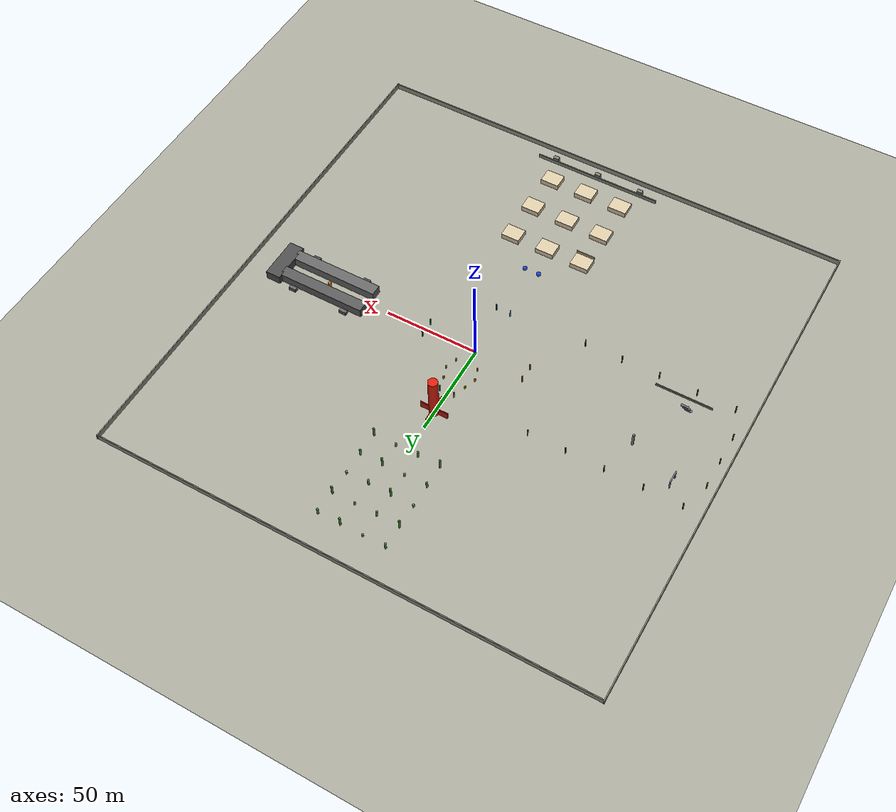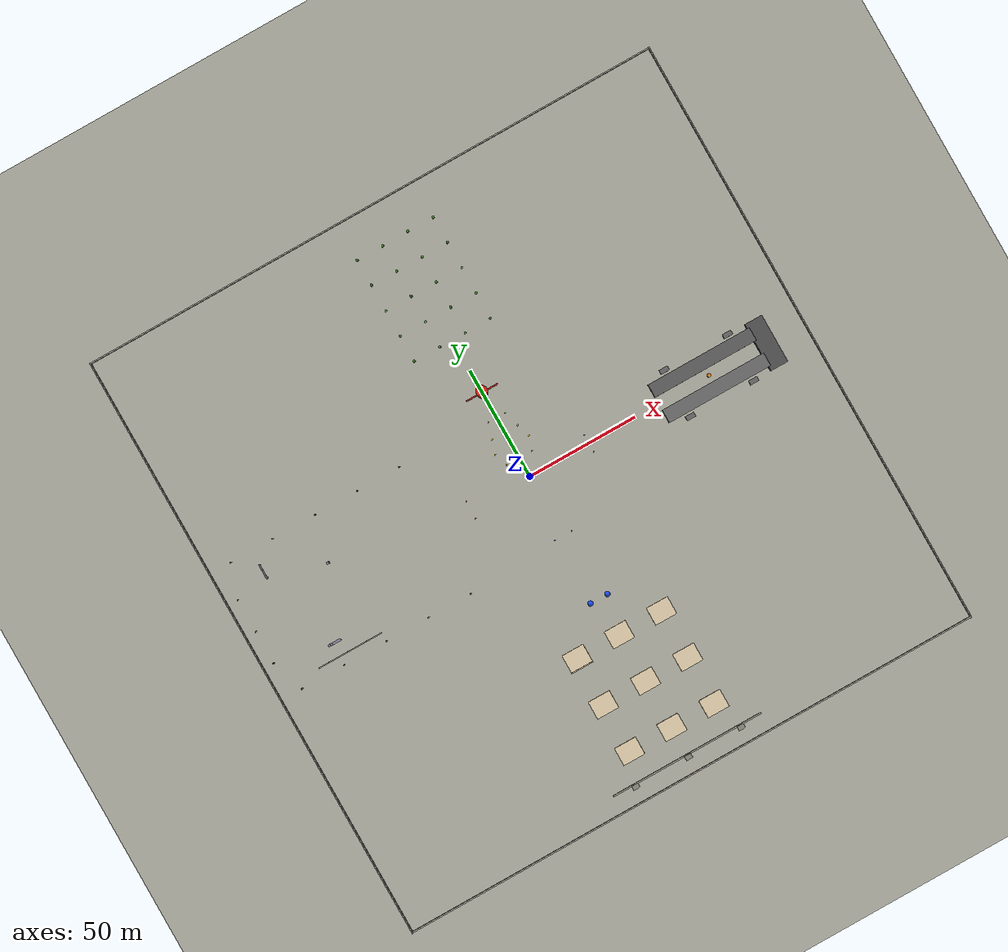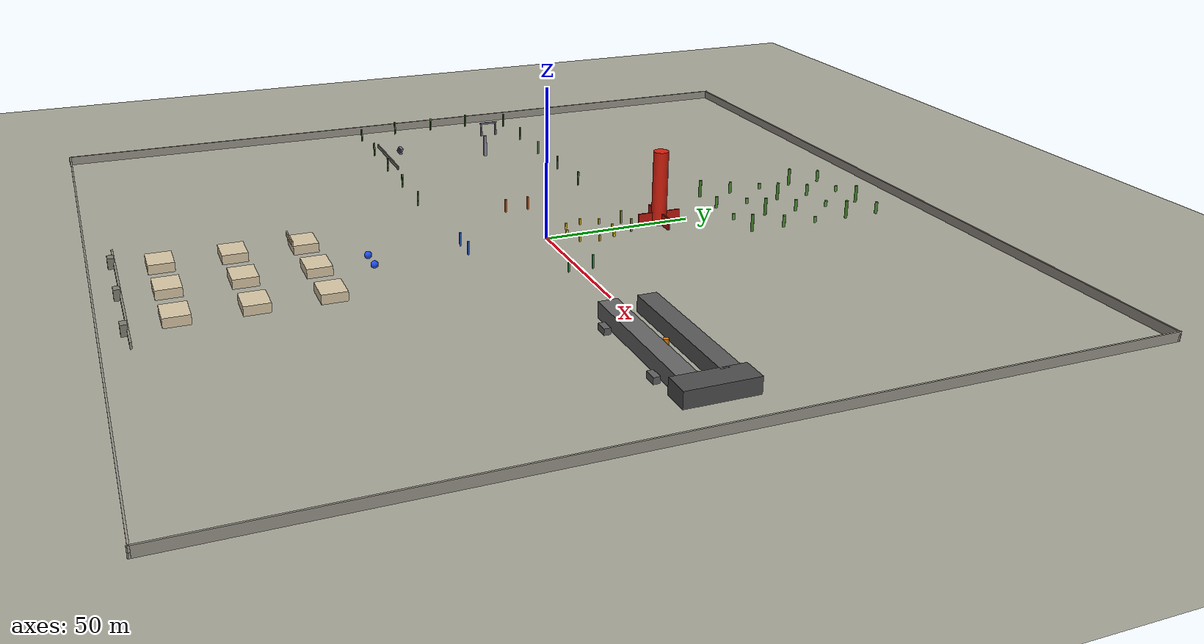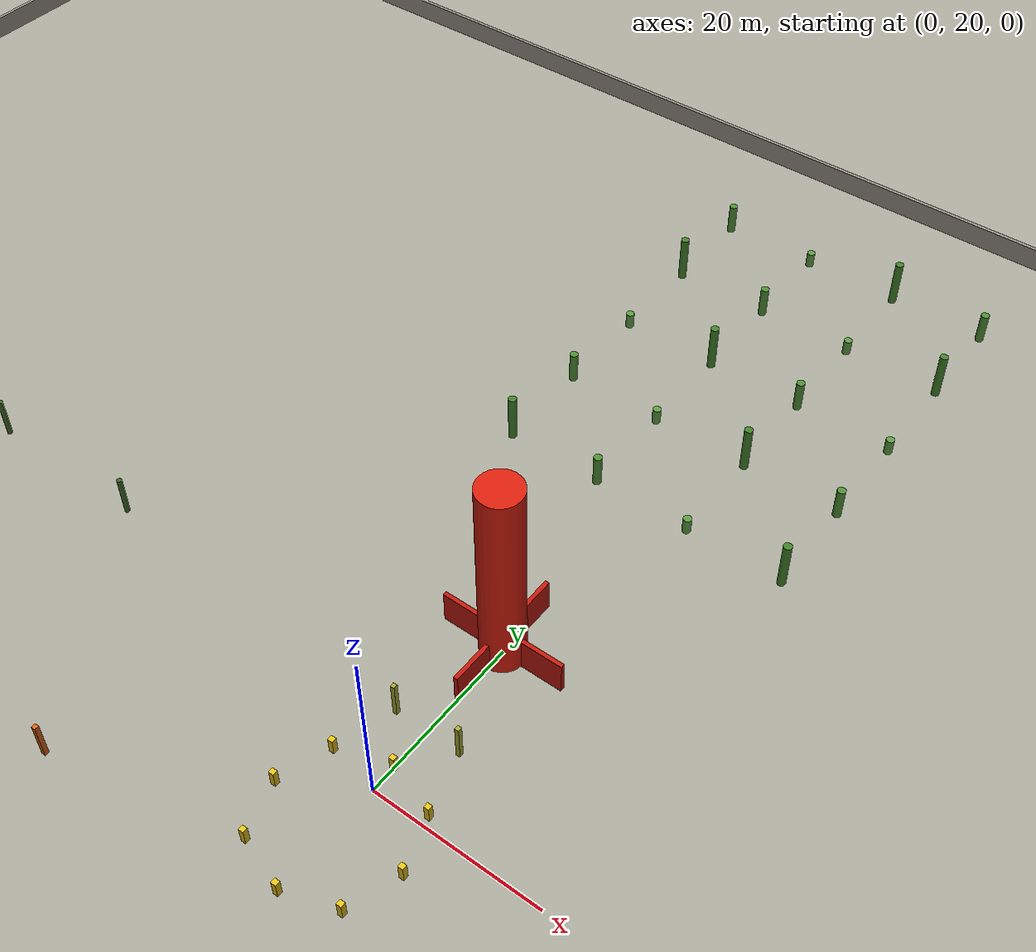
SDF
<?xml version="1.0" ?>
<sdf version="1.8">
  <world name="slam_district">

    <!-- Earth reference frame for GPS / Magnetometer sensors -->
    <spherical_coordinates>
      <surface_model>EARTH_WGS84</surface_model>
      <latitude_deg>51.5074</latitude_deg>
      <longitude_deg>-0.1278</longitude_deg>
      <elevation>0</elevation>
      <heading_deg>0</heading_deg>
    </spherical_coordinates>

    <!-- System plugins -->
    <plugin filename="gz-sim-physics-system"
            name="gz::sim::systems::Physics"/>
    <plugin filename="gz-sim-user-commands-system"
            name="gz::sim::systems::UserCommands"/>
    <plugin filename="gz-sim-scene-broadcaster-system"
            name="gz::sim::systems::SceneBroadcaster"/>
    <plugin filename="gz-sim-sensors-system"
            name="gz::sim::systems::Sensors">
      <render_engine>ogre2</render_engine>
    </plugin>
    <plugin filename="gz-sim-imu-system"
            name="gz::sim::systems::Imu"/>
    <plugin filename="gz-sim-navsat-system"
            name="gz::sim::systems::NavSat"/>
    <plugin filename="gz-sim-magnetometer-system"
            name="gz::sim::systems::Magnetometer"/>

    <!-- Lighting -->
    <light type="directional" name="sun">
      <cast_shadows>true</cast_shadows>
      <pose>0 0 10 0 0 0</pose>
      <diffuse>0.85 0.85 0.85 1</diffuse>
      <specular>0.2 0.2 0.2 1</specular>
      <attenuation>
        <range>1000</range><constant>0.9</constant>
        <linear>0.01</linear><quadratic>0.001</quadratic>
      </attenuation>
      <direction>-0.5 0.1 -0.9</direction>
    </light>

    <!-- Ground plane 600×600 m -->
    <model name="ground_plane">
      <static>true</static>
      <link name="link">
        <collision name="collision">
          <geometry><plane><normal>0 0 1</normal><size>600 600</size></plane></geometry>
        </collision>
        <visual name="visual">
          <geometry><plane><normal>0 0 1</normal><size>600 600</size></plane></geometry>
          <material>
            <ambient>0.65 0.65 0.60 1</ambient>
            <diffuse>0.65 0.65 0.60 1</diffuse>
            <specular>0.05 0.05 0.05 1</specular>
          </material>
        </visual>
      </link>
    </model>

    <!-- Landmark tower at (0, 40) — 25 m tall, RED, visible from all zones.
         Cross-shaped fins (0–4 m) give asymmetric 2D-scan signature that
         cannot be confused with any other structure. -->
    <model name="landmark_tower">
      <static>true</static>
      <pose>0 40 0 0 0 0</pose>
      <link name="link">
        <collision name="col"><geometry><cylinder><radius>2.5</radius><length>25</length></cylinder></geometry><pose>0 0 12.5 0 0 0</pose></collision>
        <visual   name="vis"><geometry><cylinder><radius>2.5</radius><length>25</length></cylinder></geometry><pose>0 0 12.5 0 0 0</pose>
          <material><ambient>0.85 0.12 0.05 1</ambient><diffuse>0.85 0.12 0.05 1</diffuse></material></visual>
      </link>
    </model>
    <!-- N fin: extends y = 42.5 → 47.5 -->
    <model name="tower_fin_n"><static>true</static><pose>0 45 0 0 0 0</pose><link name="link">
      <collision name="col"><geometry><box><size>0.5 5 4</size></box></geometry><pose>0 0 2 0 0 0</pose></collision>
      <visual   name="vis"><geometry><box><size>0.5 5 4</size></box></geometry><pose>0 0 2 0 0 0</pose><material><ambient>0.75 0.1 0.05 1</ambient><diffuse>0.75 0.1 0.05 1</diffuse></material></visual>
    </link></model>
    <!-- S fin: extends y = 32.5 → 37.5 -->
    <model name="tower_fin_s"><static>true</static><pose>0 35 0 0 0 0</pose><link name="link">
      <collision name="col"><geometry><box><size>0.5 5 4</size></box></geometry><pose>0 0 2 0 0 0</pose></collision>
      <visual   name="vis"><geometry><box><size>0.5 5 4</size></box></geometry><pose>0 0 2 0 0 0</pose><material><ambient>0.75 0.1 0.05 1</ambient><diffuse>0.75 0.1 0.05 1</diffuse></material></visual>
    </link></model>
    <!-- E fin: extends x = 2.5 → 7.5 -->
    <model name="tower_fin_e"><static>true</static><pose>5 40 0 0 0 0</pose><link name="link">
      <collision name="col"><geometry><box><size>5 0.5 4</size></box></geometry><pose>0 0 2 0 0 0</pose></collision>
      <visual   name="vis"><geometry><box><size>5 0.5 4</size></box></geometry><pose>0 0 2 0 0 0</pose><material><ambient>0.75 0.1 0.05 1</ambient><diffuse>0.75 0.1 0.05 1</diffuse></material></visual>
    </link></model>
    <!-- W fin: extends x = -7.5 → -2.5 -->
    <model name="tower_fin_w"><static>true</static><pose>-5 40 0 0 0 0</pose><link name="link">
      <collision name="col"><geometry><box><size>5 0.5 4</size></box></geometry><pose>0 0 2 0 0 0</pose></collision>
      <visual   name="vis"><geometry><box><size>5 0.5 4</size></box></geometry><pose>0 0 2 0 0 0</pose><material><ambient>0.75 0.1 0.05 1</ambient><diffuse>0.75 0.1 0.05 1</diffuse></material></visual>
    </link></model>

    <!-- Plaza pillar ring — 8 yellow pillars at r=8 m around (0,15).
         Gives a distinctive octagonal scan pattern. -->
    <model name="pp0"><static>true</static><pose> 8  15 0 0 0 0</pose><link name="link"><collision name="col"><geometry><box><size>0.6 0.6 2</size></box></geometry><pose>0 0 1 0 0 0</pose></collision><visual name="vis"><geometry><box><size>0.6 0.6 2</size></box></geometry><pose>0 0 1 0 0 0</pose><material><ambient>0.9 0.75 0.1 1</ambient><diffuse>0.9 0.75 0.1 1</diffuse></material></visual></link></model>
    <model name="pp1"><static>true</static><pose> 6  21 0 0 0 0</pose><link name="link"><collision name="col"><geometry><box><size>0.6 0.6 2</size></box></geometry><pose>0 0 1 0 0 0</pose></collision><visual name="vis"><geometry><box><size>0.6 0.6 2</size></box></geometry><pose>0 0 1 0 0 0</pose><material><ambient>0.9 0.75 0.1 1</ambient><diffuse>0.9 0.75 0.1 1</diffuse></material></visual></link></model>
    <model name="pp2"><static>true</static><pose> 0  23 0 0 0 0</pose><link name="link"><collision name="col"><geometry><box><size>0.6 0.6 2</size></box></geometry><pose>0 0 1 0 0 0</pose></collision><visual name="vis"><geometry><box><size>0.6 0.6 2</size></box></geometry><pose>0 0 1 0 0 0</pose><material><ambient>0.9 0.75 0.1 1</ambient><diffuse>0.9 0.75 0.1 1</diffuse></material></visual></link></model>
    <model name="pp3"><static>true</static><pose>-6  21 0 0 0 0</pose><link name="link"><collision name="col"><geometry><box><size>0.6 0.6 2</size></box></geometry><pose>0 0 1 0 0 0</pose></collision><visual name="vis"><geometry><box><size>0.6 0.6 2</size></box></geometry><pose>0 0 1 0 0 0</pose><material><ambient>0.9 0.75 0.1 1</ambient><diffuse>0.9 0.75 0.1 1</diffuse></material></visual></link></model>
    <model name="pp4"><static>true</static><pose>-8  15 0 0 0 0</pose><link name="link"><collision name="col"><geometry><box><size>0.6 0.6 2</size></box></geometry><pose>0 0 1 0 0 0</pose></collision><visual name="vis"><geometry><box><size>0.6 0.6 2</size></box></geometry><pose>0 0 1 0 0 0</pose><material><ambient>0.9 0.75 0.1 1</ambient><diffuse>0.9 0.75 0.1 1</diffuse></material></visual></link></model>
    <model name="pp5"><static>true</static><pose>-6   9 0 0 0 0</pose><link name="link"><collision name="col"><geometry><box><size>0.6 0.6 2</size></box></geometry><pose>0 0 1 0 0 0</pose></collision><visual name="vis"><geometry><box><size>0.6 0.6 2</size></box></geometry><pose>0 0 1 0 0 0</pose><material><ambient>0.9 0.75 0.1 1</ambient><diffuse>0.9 0.75 0.1 1</diffuse></material></visual></link></model>
    <model name="pp6"><static>true</static><pose> 0   7 0 0 0 0</pose><link name="link"><collision name="col"><geometry><box><size>0.6 0.6 2</size></box></geometry><pose>0 0 1 0 0 0</pose></collision><visual name="vis"><geometry><box><size>0.6 0.6 2</size></box></geometry><pose>0 0 1 0 0 0</pose><material><ambient>0.9 0.75 0.1 1</ambient><diffuse>0.9 0.75 0.1 1</diffuse></material></visual></link></model>
    <model name="pp7"><static>true</static><pose> 6   9 0 0 0 0</pose><link name="link"><collision name="col"><geometry><box><size>0.6 0.6 2</size></box></geometry><pose>0 0 1 0 0 0</pose></collision><visual name="vis"><geometry><box><size>0.6 0.6 2</size></box></geometry><pose>0 0 1 0 0 0</pose><material><ambient>0.9 0.75 0.1 1</ambient><diffuse>0.9 0.75 0.1 1</diffuse></material></visual></link></model>

    <!-- Zone gateway arches — pair of 4.5 m posts flanking each corridor.
         Each arch colour is unique so the robot knows which zone it is entering. -->
    <!-- North arch (→ Zone 1, olive) -->
    <model name="arch_n_l"><static>true</static><pose>-4 28 0 0 0 0</pose><link name="link"><collision name="col"><geometry><box><size>0.5 0.5 4.5</size></box></geometry><pose>0 0 2.25 0 0 0</pose></collision><visual name="vis"><geometry><box><size>0.5 0.5 4.5</size></box></geometry><pose>0 0 2.25 0 0 0</pose><material><ambient>0.65 0.65 0.2 1</ambient><diffuse>0.65 0.65 0.2 1</diffuse></material></visual></link></model>
    <model name="arch_n_r"><static>true</static><pose> 4 28 0 0 0 0</pose><link name="link"><collision name="col"><geometry><box><size>0.5 0.5 4.5</size></box></geometry><pose>0 0 2.25 0 0 0</pose></collision><visual name="vis"><geometry><box><size>0.5 0.5 4.5</size></box></geometry><pose>0 0 2.25 0 0 0</pose><material><ambient>0.65 0.65 0.2 1</ambient><diffuse>0.65 0.65 0.2 1</diffuse></material></visual></link></model>
    <!-- South arch (→ Zone 4, blue) -->
    <model name="arch_s_l"><static>true</static><pose>-4 -28 0 0 0 0</pose><link name="link"><collision name="col"><geometry><box><size>0.5 0.5 4.5</size></box></geometry><pose>0 0 2.25 0 0 0</pose></collision><visual name="vis"><geometry><box><size>0.5 0.5 4.5</size></box></geometry><pose>0 0 2.25 0 0 0</pose><material><ambient>0.2 0.4 0.85 1</ambient><diffuse>0.2 0.4 0.85 1</diffuse></material></visual></link></model>
    <model name="arch_s_r"><static>true</static><pose> 4 -28 0 0 0 0</pose><link name="link"><collision name="col"><geometry><box><size>0.5 0.5 4.5</size></box></geometry><pose>0 0 2.25 0 0 0</pose></collision><visual name="vis"><geometry><box><size>0.5 0.5 4.5</size></box></geometry><pose>0 0 2.25 0 0 0</pose><material><ambient>0.2 0.4 0.85 1</ambient><diffuse>0.2 0.4 0.85 1</diffuse></material></visual></link></model>
    <!-- East arch (→ Zone 2, green) -->
    <model name="arch_e_l"><static>true</static><pose>28  4 0 0 0 0</pose><link name="link"><collision name="col"><geometry><box><size>0.5 0.5 4.5</size></box></geometry><pose>0 0 2.25 0 0 0</pose></collision><visual name="vis"><geometry><box><size>0.5 0.5 4.5</size></box></geometry><pose>0 0 2.25 0 0 0</pose><material><ambient>0.15 0.7 0.25 1</ambient><diffuse>0.15 0.7 0.25 1</diffuse></material></visual></link></model>
    <model name="arch_e_r"><static>true</static><pose>28 -4 0 0 0 0</pose><link name="link"><collision name="col"><geometry><box><size>0.5 0.5 4.5</size></box></geometry><pose>0 0 2.25 0 0 0</pose></collision><visual name="vis"><geometry><box><size>0.5 0.5 4.5</size></box></geometry><pose>0 0 2.25 0 0 0</pose><material><ambient>0.15 0.7 0.25 1</ambient><diffuse>0.15 0.7 0.25 1</diffuse></material></visual></link></model>
    <!-- West arch (→ Zone 5, orange) -->
    <model name="arch_w_l"><static>true</static><pose>-28  4 0 0 0 0</pose><link name="link"><collision name="col"><geometry><box><size>0.5 0.5 4.5</size></box></geometry><pose>0 0 2.25 0 0 0</pose></collision><visual name="vis"><geometry><box><size>0.5 0.5 4.5</size></box></geometry><pose>0 0 2.25 0 0 0</pose><material><ambient>0.85 0.38 0.08 1</ambient><diffuse>0.85 0.38 0.08 1</diffuse></material></visual></link></model>
    <model name="arch_w_r"><static>true</static><pose>-28 -4 0 0 0 0</pose><link name="link"><collision name="col"><geometry><box><size>0.5 0.5 4.5</size></box></geometry><pose>0 0 2.25 0 0 0</pose></collision><visual name="vis"><geometry><box><size>0.5 0.5 4.5</size></box></geometry><pose>0 0 2.25 0 0 0</pose><material><ambient>0.85 0.38 0.08 1</ambient><diffuse>0.85 0.38 0.08 1</diffuse></material></visual></link></model>

    <!-- col x: -18  -6  +6  +18  |  row y: 65  77  89  101  113 -->
    <model name="fp00"><static>true</static><pose>-18  65 0 0 0 0</pose><link name="link"><collision name="col"><geometry><cylinder><radius>0.5</radius><length>6</length></cylinder></geometry><pose>0 0 3 0 0 0</pose></collision><visual name="vis"><geometry><cylinder><radius>0.5</radius><length>6</length></cylinder></geometry><pose>0 0 3 0 0 0</pose><material><ambient>0.25 0.50 0.15 1</ambient><diffuse>0.25 0.50 0.15 1</diffuse></material></visual></link></model>
    <model name="fp01"><static>true</static><pose>-18  77 0 0 0 0</pose><link name="link"><collision name="col"><geometry><cylinder><radius>0.5</radius><length>4</length></cylinder></geometry><pose>0 0 2 0 0 0</pose></collision><visual name="vis"><geometry><cylinder><radius>0.5</radius><length>4</length></cylinder></geometry><pose>0 0 2 0 0 0</pose><material><ambient>0.30 0.55 0.20 1</ambient><diffuse>0.30 0.55 0.20 1</diffuse></material></visual></link></model>
    <model name="fp02"><static>true</static><pose>-18  89 0 0 0 0</pose><link name="link"><collision name="col"><geometry><cylinder><radius>0.5</radius><length>2</length></cylinder></geometry><pose>0 0 1 0 0 0</pose></collision><visual name="vis"><geometry><cylinder><radius>0.5</radius><length>2</length></cylinder></geometry><pose>0 0 1 0 0 0</pose><material><ambient>0.35 0.60 0.25 1</ambient><diffuse>0.35 0.60 0.25 1</diffuse></material></visual></link></model>
    <model name="fp03"><static>true</static><pose>-18 101 0 0 0 0</pose><link name="link"><collision name="col"><geometry><cylinder><radius>0.5</radius><length>6</length></cylinder></geometry><pose>0 0 3 0 0 0</pose></collision><visual name="vis"><geometry><cylinder><radius>0.5</radius><length>6</length></cylinder></geometry><pose>0 0 3 0 0 0</pose><material><ambient>0.25 0.50 0.15 1</ambient><diffuse>0.25 0.50 0.15 1</diffuse></material></visual></link></model>
    <model name="fp04"><static>true</static><pose>-18 113 0 0 0 0</pose><link name="link"><collision name="col"><geometry><cylinder><radius>0.5</radius><length>4</length></cylinder></geometry><pose>0 0 2 0 0 0</pose></collision><visual name="vis"><geometry><cylinder><radius>0.5</radius><length>4</length></cylinder></geometry><pose>0 0 2 0 0 0</pose><material><ambient>0.30 0.55 0.20 1</ambient><diffuse>0.30 0.55 0.20 1</diffuse></material></visual></link></model>
    <model name="fp10"><static>true</static><pose> -6  65 0 0 0 0</pose><link name="link"><collision name="col"><geometry><cylinder><radius>0.5</radius><length>4</length></cylinder></geometry><pose>0 0 2 0 0 0</pose></collision><visual name="vis"><geometry><cylinder><radius>0.5</radius><length>4</length></cylinder></geometry><pose>0 0 2 0 0 0</pose><material><ambient>0.30 0.55 0.20 1</ambient><diffuse>0.30 0.55 0.20 1</diffuse></material></visual></link></model>
    <model name="fp11"><static>true</static><pose> -6  77 0 0 0 0</pose><link name="link"><collision name="col"><geometry><cylinder><radius>0.5</radius><length>2</length></cylinder></geometry><pose>0 0 1 0 0 0</pose></collision><visual name="vis"><geometry><cylinder><radius>0.5</radius><length>2</length></cylinder></geometry><pose>0 0 1 0 0 0</pose><material><ambient>0.35 0.60 0.25 1</ambient><diffuse>0.35 0.60 0.25 1</diffuse></material></visual></link></model>
    <model name="fp12"><static>true</static><pose> -6  89 0 0 0 0</pose><link name="link"><collision name="col"><geometry><cylinder><radius>0.5</radius><length>6</length></cylinder></geometry><pose>0 0 3 0 0 0</pose></collision><visual name="vis"><geometry><cylinder><radius>0.5</radius><length>6</length></cylinder></geometry><pose>0 0 3 0 0 0</pose><material><ambient>0.25 0.50 0.15 1</ambient><diffuse>0.25 0.50 0.15 1</diffuse></material></visual></link></model>
    <model name="fp13"><static>true</static><pose> -6 101 0 0 0 0</pose><link name="link"><collision name="col"><geometry><cylinder><radius>0.5</radius><length>4</length></cylinder></geometry><pose>0 0 2 0 0 0</pose></collision><visual name="vis"><geometry><cylinder><radius>0.5</radius><length>4</length></cylinder></geometry><pose>0 0 2 0 0 0</pose><material><ambient>0.30 0.55 0.20 1</ambient><diffuse>0.30 0.55 0.20 1</diffuse></material></visual></link></model>
    <model name="fp14"><static>true</static><pose> -6 113 0 0 0 0</pose><link name="link"><collision name="col"><geometry><cylinder><radius>0.5</radius><length>2</length></cylinder></geometry><pose>0 0 1 0 0 0</pose></collision><visual name="vis"><geometry><cylinder><radius>0.5</radius><length>2</length></cylinder></geometry><pose>0 0 1 0 0 0</pose><material><ambient>0.35 0.60 0.25 1</ambient><diffuse>0.35 0.60 0.25 1</diffuse></material></visual></link></model>
    <model name="fp20"><static>true</static><pose>  6  65 0 0 0 0</pose><link name="link"><collision name="col"><geometry><cylinder><radius>0.5</radius><length>2</length></cylinder></geometry><pose>0 0 1 0 0 0</pose></collision><visual name="vis"><geometry><cylinder><radius>0.5</radius><length>2</length></cylinder></geometry><pose>0 0 1 0 0 0</pose><material><ambient>0.35 0.60 0.25 1</ambient><diffuse>0.35 0.60 0.25 1</diffuse></material></visual></link></model>
    <model name="fp21"><static>true</static><pose>  6  77 0 0 0 0</pose><link name="link"><collision name="col"><geometry><cylinder><radius>0.5</radius><length>6</length></cylinder></geometry><pose>0 0 3 0 0 0</pose></collision><visual name="vis"><geometry><cylinder><radius>0.5</radius><length>6</length></cylinder></geometry><pose>0 0 3 0 0 0</pose><material><ambient>0.25 0.50 0.15 1</ambient><diffuse>0.25 0.50 0.15 1</diffuse></material></visual></link></model>
    <model name="fp22"><static>true</static><pose>  6  89 0 0 0 0</pose><link name="link"><collision name="col"><geometry><cylinder><radius>0.5</radius><length>4</length></cylinder></geometry><pose>0 0 2 0 0 0</pose></collision><visual name="vis"><geometry><cylinder><radius>0.5</radius><length>4</length></cylinder></geometry><pose>0 0 2 0 0 0</pose><material><ambient>0.30 0.55 0.20 1</ambient><diffuse>0.30 0.55 0.20 1</diffuse></material></visual></link></model>
    <model name="fp23"><static>true</static><pose>  6 101 0 0 0 0</pose><link name="link"><collision name="col"><geometry><cylinder><radius>0.5</radius><length>2</length></cylinder></geometry><pose>0 0 1 0 0 0</pose></collision><visual name="vis"><geometry><cylinder><radius>0.5</radius><length>2</length></cylinder></geometry><pose>0 0 1 0 0 0</pose><material><ambient>0.35 0.60 0.25 1</ambient><diffuse>0.35 0.60 0.25 1</diffuse></material></visual></link></model>
    <model name="fp24"><static>true</static><pose>  6 113 0 0 0 0</pose><link name="link"><collision name="col"><geometry><cylinder><radius>0.5</radius><length>6</length></cylinder></geometry><pose>0 0 3 0 0 0</pose></collision><visual name="vis"><geometry><cylinder><radius>0.5</radius><length>6</length></cylinder></geometry><pose>0 0 3 0 0 0</pose><material><ambient>0.25 0.50 0.15 1</ambient><diffuse>0.25 0.50 0.15 1</diffuse></material></visual></link></model>
    <model name="fp30"><static>true</static><pose> 18  65 0 0 0 0</pose><link name="link"><collision name="col"><geometry><cylinder><radius>0.5</radius><length>6</length></cylinder></geometry><pose>0 0 3 0 0 0</pose></collision><visual name="vis"><geometry><cylinder><radius>0.5</radius><length>6</length></cylinder></geometry><pose>0 0 3 0 0 0</pose><material><ambient>0.25 0.50 0.15 1</ambient><diffuse>0.25 0.50 0.15 1</diffuse></material></visual></link></model>
    <model name="fp31"><static>true</static><pose> 18  77 0 0 0 0</pose><link name="link"><collision name="col"><geometry><cylinder><radius>0.5</radius><length>4</length></cylinder></geometry><pose>0 0 2 0 0 0</pose></collision><visual name="vis"><geometry><cylinder><radius>0.5</radius><length>4</length></cylinder></geometry><pose>0 0 2 0 0 0</pose><material><ambient>0.30 0.55 0.20 1</ambient><diffuse>0.30 0.55 0.20 1</diffuse></material></visual></link></model>
    <model name="fp32"><static>true</static><pose> 18  89 0 0 0 0</pose><link name="link"><collision name="col"><geometry><cylinder><radius>0.5</radius><length>2</length></cylinder></geometry><pose>0 0 1 0 0 0</pose></collision><visual name="vis"><geometry><cylinder><radius>0.5</radius><length>2</length></cylinder></geometry><pose>0 0 1 0 0 0</pose><material><ambient>0.35 0.60 0.25 1</ambient><diffuse>0.35 0.60 0.25 1</diffuse></material></visual></link></model>
    <model name="fp33"><static>true</static><pose> 18 101 0 0 0 0</pose><link name="link"><collision name="col"><geometry><cylinder><radius>0.5</radius><length>6</length></cylinder></geometry><pose>0 0 3 0 0 0</pose></collision><visual name="vis"><geometry><cylinder><radius>0.5</radius><length>6</length></cylinder></geometry><pose>0 0 3 0 0 0</pose><material><ambient>0.25 0.50 0.15 1</ambient><diffuse>0.25 0.50 0.15 1</diffuse></material></visual></link></model>
    <model name="fp34"><static>true</static><pose> 18 113 0 0 0 0</pose><link name="link"><collision name="col"><geometry><cylinder><radius>0.5</radius><length>4</length></cylinder></geometry><pose>0 0 2 0 0 0</pose></collision><visual name="vis"><geometry><cylinder><radius>0.5</radius><length>4</length></cylinder></geometry><pose>0 0 2 0 0 0</pose><material><ambient>0.30 0.55 0.20 1</ambient><diffuse>0.30 0.55 0.20 1</diffuse></material></visual></link></model>

    <!-- Warehouse A (north, south face at y=3, north face at y=9) -->
    <model name="warehouse_a">
      <static>true</static>
      <pose>85 6 0 0 0 0</pose>
      <link name="link">
        <collision name="col"><geometry><box><size>48 6 5</size></box></geometry><pose>0 0 2.5 0 0 0</pose></collision>
        <visual   name="vis"><geometry><box><size>48 6 5</size></box></geometry><pose>0 0 2.5 0 0 0</pose>
          <material><ambient>0.35 0.35 0.35 1</ambient><diffuse>0.35 0.35 0.35 1</diffuse></material></visual>
      </link>
    </model>
    <!-- Warehouse B (south, north face at y=-3, south face at y=-9) -->
    <model name="warehouse_b">
      <static>true</static>
      <pose>85 -6 0 0 0 0</pose>
      <link name="link">
        <collision name="col"><geometry><box><size>48 6 5</size></box></geometry><pose>0 0 2.5 0 0 0</pose></collision>
        <visual   name="vis"><geometry><box><size>48 6 5</size></box></geometry><pose>0 0 2.5 0 0 0</pose>
          <material><ambient>0.40 0.40 0.40 1</ambient><diffuse>0.40 0.40 0.40 1</diffuse></material></visual>
      </link>
    </model>
    <!-- Closing wall — dead-end at east end; spans y=[-11, 11] -->
    <model name="warehouse_c">
      <static>true</static>
      <pose>112 0 0 0 0 0</pose>
      <link name="link">
        <collision name="col"><geometry><box><size>8 22 5</size></box></geometry><pose>0 0 2.5 0 0 0</pose></collision>
        <visual   name="vis"><geometry><box><size>8 22 5</size></box></geometry><pose>0 0 2.5 0 0 0</pose>
          <material><ambient>0.30 0.30 0.30 1</ambient><diffuse>0.30 0.30 0.30 1</diffuse></material></visual>
      </link>
    </model>
    <!-- LC-C: orange midpoint cylinder (the only round object in the corridor) -->
    <model name="corridor_marker">
      <static>true</static>
      <pose>85 0 0 0 0 0</pose>
      <link name="link">
        <collision name="col"><geometry><cylinder><radius>0.8</radius><length>3</length></cylinder></geometry><pose>0 0 1.5 0 0 0</pose></collision>
        <visual   name="vis"><geometry><cylinder><radius>0.8</radius><length>3</length></cylinder></geometry><pose>0 0 1.5 0 0 0</pose>
          <material><ambient>0.85 0.50 0.08 1</ambient><diffuse>0.85 0.50 0.08 1</diffuse></material></visual>
      </link>
    </model>
    <!-- Loading dock bumps — break flat-wall scan ambiguity on outer faces -->
    <model name="dock_a1"><static>true</static><pose> 70 11 0 0 0 0</pose><link name="link"><collision name="col"><geometry><box><size>4 2 2</size></box></geometry><pose>0 0 1 0 0 0</pose></collision><visual name="vis"><geometry><box><size>4 2 2</size></box></geometry><pose>0 0 1 0 0 0</pose><material><ambient>0.38 0.38 0.38 1</ambient><diffuse>0.38 0.38 0.38 1</diffuse></material></visual></link></model>
    <model name="dock_a2"><static>true</static><pose>100 11 0 0 0 0</pose><link name="link"><collision name="col"><geometry><box><size>4 2 2</size></box></geometry><pose>0 0 1 0 0 0</pose></collision><visual name="vis"><geometry><box><size>4 2 2</size></box></geometry><pose>0 0 1 0 0 0</pose><material><ambient>0.38 0.38 0.38 1</ambient><diffuse>0.38 0.38 0.38 1</diffuse></material></visual></link></model>
    <model name="dock_b1"><static>true</static><pose> 70 -11 0 0 0 0</pose><link name="link"><collision name="col"><geometry><box><size>4 2 2</size></box></geometry><pose>0 0 1 0 0 0</pose></collision><visual name="vis"><geometry><box><size>4 2 2</size></box></geometry><pose>0 0 1 0 0 0</pose><material><ambient>0.38 0.38 0.38 1</ambient><diffuse>0.38 0.38 0.38 1</diffuse></material></visual></link></model>
    <model name="dock_b2"><static>true</static><pose>100 -11 0 0 0 0</pose><link name="link"><collision name="col"><geometry><box><size>4 2 2</size></box></geometry><pose>0 0 1 0 0 0</pose></collision><visual name="vis"><geometry><box><size>4 2 2</size></box></geometry><pose>0 0 1 0 0 0</pose><material><ambient>0.38 0.38 0.38 1</ambient><diffuse>0.38 0.38 0.38 1</diffuse></material></visual></link></model>

    <!-- LC-D: blue sphere pair — unique zone-entry markers -->
    <model name="z4_sphere_l">
      <static>true</static>
      <pose>-4 -58 0 0 0 0</pose>
      <link name="link">
        <collision name="col"><geometry><sphere><radius>1.2</radius></sphere></geometry><pose>0 0 1.2 0 0 0</pose></collision>
        <visual   name="vis"><geometry><sphere><radius>1.2</radius></sphere></geometry><pose>0 0 1.2 0 0 0</pose>
          <material><ambient>0.1 0.3 0.9 1</ambient><diffuse>0.1 0.3 0.9 1</diffuse></material></visual>
      </link>
    </model>
    <model name="z4_sphere_r">
      <static>true</static>
      <pose>4 -58 0 0 0 0</pose>
      <link name="link">
        <collision name="col"><geometry><sphere><radius>1.2</radius></sphere></geometry><pose>0 0 1.2 0 0 0</pose></collision>
        <visual   name="vis"><geometry><sphere><radius>1.2</radius></sphere></geometry><pose>0 0 1.2 0 0 0</pose>
          <material><ambient>0.1 0.3 0.9 1</ambient><diffuse>0.1 0.3 0.9 1</diffuse></material></visual>
      </link>
    </model>

    <!-- 9 identical houses.  col x = {-20, 0, 20},  row y = {-75, -97, -119} -->
    <model name="house_c0r0"><static>true</static><pose>-20  -75 0 0 0 0</pose><link name="link"><collision name="col"><geometry><box><size>10 8 3</size></box></geometry><pose>0 0 1.5 0 0 0</pose></collision><visual name="vis"><geometry><box><size>10 8 3</size></box></geometry><pose>0 0 1.5 0 0 0</pose><material><ambient>0.85 0.78 0.65 1</ambient><diffuse>0.85 0.78 0.65 1</diffuse></material></visual></link></model>
    <model name="house_c1r0"><static>true</static><pose>  0  -75 0 0 0 0</pose><link name="link"><collision name="col"><geometry><box><size>10 8 3</size></box></geometry><pose>0 0 1.5 0 0 0</pose></collision><visual name="vis"><geometry><box><size>10 8 3</size></box></geometry><pose>0 0 1.5 0 0 0</pose><material><ambient>0.85 0.78 0.65 1</ambient><diffuse>0.85 0.78 0.65 1</diffuse></material></visual></link></model>
    <model name="house_c2r0"><static>true</static><pose> 20  -75 0 0 0 0</pose><link name="link"><collision name="col"><geometry><box><size>10 8 3</size></box></geometry><pose>0 0 1.5 0 0 0</pose></collision><visual name="vis"><geometry><box><size>10 8 3</size></box></geometry><pose>0 0 1.5 0 0 0</pose><material><ambient>0.85 0.78 0.65 1</ambient><diffuse>0.85 0.78 0.65 1</diffuse></material></visual></link></model>
    <model name="house_c0r1"><static>true</static><pose>-20  -97 0 0 0 0</pose><link name="link"><collision name="col"><geometry><box><size>10 8 3</size></box></geometry><pose>0 0 1.5 0 0 0</pose></collision><visual name="vis"><geometry><box><size>10 8 3</size></box></geometry><pose>0 0 1.5 0 0 0</pose><material><ambient>0.85 0.78 0.65 1</ambient><diffuse>0.85 0.78 0.65 1</diffuse></material></visual></link></model>
    <model name="house_c1r1"><static>true</static><pose>  0  -97 0 0 0 0</pose><link name="link"><collision name="col"><geometry><box><size>10 8 3</size></box></geometry><pose>0 0 1.5 0 0 0</pose></collision><visual name="vis"><geometry><box><size>10 8 3</size></box></geometry><pose>0 0 1.5 0 0 0</pose><material><ambient>0.85 0.78 0.65 1</ambient><diffuse>0.85 0.78 0.65 1</diffuse></material></visual></link></model>
    <model name="house_c2r1"><static>true</static><pose> 20  -97 0 0 0 0</pose><link name="link"><collision name="col"><geometry><box><size>10 8 3</size></box></geometry><pose>0 0 1.5 0 0 0</pose></collision><visual name="vis"><geometry><box><size>10 8 3</size></box></geometry><pose>0 0 1.5 0 0 0</pose><material><ambient>0.85 0.78 0.65 1</ambient><diffuse>0.85 0.78 0.65 1</diffuse></material></visual></link></model>
    <model name="house_c0r2"><static>true</static><pose>-20 -119 0 0 0 0</pose><link name="link"><collision name="col"><geometry><box><size>10 8 3</size></box></geometry><pose>0 0 1.5 0 0 0</pose></collision><visual name="vis"><geometry><box><size>10 8 3</size></box></geometry><pose>0 0 1.5 0 0 0</pose><material><ambient>0.85 0.78 0.65 1</ambient><diffuse>0.85 0.78 0.65 1</diffuse></material></visual></link></model>
    <model name="house_c1r2"><static>true</static><pose>  0 -119 0 0 0 0</pose><link name="link"><collision name="col"><geometry><box><size>10 8 3</size></box></geometry><pose>0 0 1.5 0 0 0</pose></collision><visual name="vis"><geometry><box><size>10 8 3</size></box></geometry><pose>0 0 1.5 0 0 0</pose><material><ambient>0.85 0.78 0.65 1</ambient><diffuse>0.85 0.78 0.65 1</diffuse></material></visual></link></model>
    <model name="house_c2r2"><static>true</static><pose> 20 -119 0 0 0 0</pose><link name="link"><collision name="col"><geometry><box><size>10 8 3</size></box></geometry><pose>0 0 1.5 0 0 0</pose></collision><visual name="vis"><geometry><box><size>10 8 3</size></box></geometry><pose>0 0 1.5 0 0 0</pose><material><ambient>0.85 0.78 0.65 1</ambient><diffuse>0.85 0.78 0.65 1</diffuse></material></visual></link></model>

    <!-- Deviant house (c0r0): extra south-face parapet visible at close range -->
    <model name="house_c0r0_parapet">
      <static>true</static>
      <pose>-20 -79.2 0 0 0 0</pose>
      <link name="link">
        <collision name="col"><geometry><box><size>10 0.4 1.5</size></box></geometry><pose>0 0 3.75 0 0 0</pose></collision>
        <visual   name="vis"><geometry><box><size>10 0.4 1.5</size></box></geometry><pose>0 0 3.75 0 0 0</pose>
          <material><ambient>0.75 0.68 0.55 1</ambient><diffuse>0.75 0.68 0.55 1</diffuse></material></visual>
      </link>
    </model>

    <!-- South perimeter wall with buttresses — unique zone boundary -->
    <model name="z4_south_wall">
      <static>true</static>
      <pose>0 -132 0 0 0 0</pose>
      <link name="link">
        <collision name="col"><geometry><box><size>70 0.6 2</size></box></geometry><pose>0 0 1 0 0 0</pose></collision>
        <visual   name="vis"><geometry><box><size>70 0.6 2</size></box></geometry><pose>0 0 1 0 0 0</pose>
          <material><ambient>0.55 0.55 0.50 1</ambient><diffuse>0.55 0.55 0.50 1</diffuse></material></visual>
      </link>
    </model>
    <model name="z4_but1"><static>true</static><pose>-25 -133 0 0 0 0</pose><link name="link"><collision name="col"><geometry><box><size>3 2 3.5</size></box></geometry><pose>0 0 1.75 0 0 0</pose></collision><visual name="vis"><geometry><box><size>3 2 3.5</size></box></geometry><pose>0 0 1.75 0 0 0</pose><material><ambient>0.5 0.5 0.45 1</ambient><diffuse>0.5 0.5 0.45 1</diffuse></material></visual></link></model>
    <model name="z4_but2"><static>true</static><pose>  0 -133 0 0 0 0</pose><link name="link"><collision name="col"><geometry><box><size>3 2 3.5</size></box></geometry><pose>0 0 1.75 0 0 0</pose></collision><visual name="vis"><geometry><box><size>3 2 3.5</size></box></geometry><pose>0 0 1.75 0 0 0</pose><material><ambient>0.5 0.5 0.45 1</ambient><diffuse>0.5 0.5 0.45 1</diffuse></material></visual></link></model>
    <model name="z4_but3"><static>true</static><pose> 25 -133 0 0 0 0</pose><link name="link"><collision name="col"><geometry><box><size>3 2 3.5</size></box></geometry><pose>0 0 1.75 0 0 0</pose></collision><visual name="vis"><geometry><box><size>3 2 3.5</size></box></geometry><pose>0 0 1.75 0 0 0</pose><material><ambient>0.5 0.5 0.45 1</ambient><diffuse>0.5 0.5 0.45 1</diffuse></material></visual></link></model>

    <!-- Sculpture A: Monolith — 1×1×8 m.  Tallest thin structure anywhere. -->
    <model name="monolith">
      <static>true</static>
      <pose>-90 10 0 0 0 0</pose>
      <link name="link">
        <collision name="col"><geometry><box><size>1 1 8</size></box></geometry><pose>0 0 4 0 0 0</pose></collision>
        <visual   name="vis"><geometry><box><size>1 1 8</size></box></geometry><pose>0 0 4 0 0 0</pose>
          <material><ambient>0.55 0.55 0.62 1</ambient><diffuse>0.55 0.55 0.62 1</diffuse></material></visual>
      </link>
    </model>

    <!-- Sculpture B: Arch — two posts + crossbar spanning 6 m in Y. -->
    <model name="arch_post_l"><static>true</static><pose>-115 23 0 0 0 0</pose><link name="link"><collision name="col"><geometry><box><size>0.6 0.6 5</size></box></geometry><pose>0 0 2.5 0 0 0</pose></collision><visual name="vis"><geometry><box><size>0.6 0.6 5</size></box></geometry><pose>0 0 2.5 0 0 0</pose><material><ambient>0.50 0.50 0.58 1</ambient><diffuse>0.50 0.50 0.58 1</diffuse></material></visual></link></model>
    <model name="arch_post_r"><static>true</static><pose>-115 17 0 0 0 0</pose><link name="link"><collision name="col"><geometry><box><size>0.6 0.6 5</size></box></geometry><pose>0 0 2.5 0 0 0</pose></collision><visual name="vis"><geometry><box><size>0.6 0.6 5</size></box></geometry><pose>0 0 2.5 0 0 0</pose><material><ambient>0.50 0.50 0.58 1</ambient><diffuse>0.50 0.50 0.58 1</diffuse></material></visual></link></model>
    <model name="arch_bar"><static>true</static><pose>-115 20 0 0 0 0</pose><link name="link"><collision name="col"><geometry><box><size>0.6 7 0.6</size></box></geometry><pose>0 0 5.1 0 0 0</pose></collision><visual name="vis"><geometry><box><size>0.6 7 0.6</size></box></geometry><pose>0 0 5.1 0 0 0</pose><material><ambient>0.50 0.50 0.58 1</ambient><diffuse>0.50 0.50 0.58 1</diffuse></material></visual></link></model>

    <!-- Sculpture C: Wedge stack — 3 offset slabs, unique staircase in 3D scan. -->
    <model name="wedge_1"><static>true</static><pose>-105 -20 0 0 0 0</pose><link name="link"><collision name="col"><geometry><box><size>4 1 0.5</size></box></geometry><pose>0 0 0.25 0 0 0</pose></collision><visual name="vis"><geometry><box><size>4 1 0.5</size></box></geometry><pose>0 0 0.25 0 0 0</pose><material><ambient>0.50 0.50 0.58 1</ambient><diffuse>0.50 0.50 0.58 1</diffuse></material></visual></link></model>
    <model name="wedge_2"><static>true</static><pose>-104 -20 0 0 0 0</pose><link name="link"><collision name="col"><geometry><box><size>4 1 0.5</size></box></geometry><pose>0 0 1.25 0 0 0</pose></collision><visual name="vis"><geometry><box><size>4 1 0.5</size></box></geometry><pose>0 0 1.25 0 0 0</pose><material><ambient>0.50 0.50 0.58 1</ambient><diffuse>0.50 0.50 0.58 1</diffuse></material></visual></link></model>
    <model name="wedge_3"><static>true</static><pose>-103 -20 0 0 0 0</pose><link name="link"><collision name="col"><geometry><box><size>4 1 0.5</size></box></geometry><pose>0 0 2.25 0 0 0</pose></collision><visual name="vis"><geometry><box><size>4 1 0.5</size></box></geometry><pose>0 0 2.25 0 0 0</pose><material><ambient>0.50 0.50 0.58 1</ambient><diffuse>0.50 0.50 0.58 1</diffuse></material></visual></link></model>

    <!-- Long low wall — 30 m, triggers brief corridor problem at y=-26 -->
    <model name="z5_low_wall">
      <static>true</static>
      <pose>-100 -26 0 0 0 0</pose>
      <link name="link">
        <collision name="col"><geometry><box><size>30 0.4 1.2</size></box></geometry><pose>0 0 0.6 0 0 0</pose></collision>
        <visual   name="vis"><geometry><box><size>30 0.4 1.2</size></box></geometry><pose>0 0 0.6 0 0 0</pose>
          <material><ambient>0.55 0.52 0.48 1</ambient><diffuse>0.55 0.52 0.48 1</diffuse></material></visual>
      </link>
    </model>

    <!-- Perimeter trees: 5 N (y=30), 5 S (y=-30), 3 W (x=-130) -->
    <model name="tr_n1"><static>true</static><pose> -45  30 0 0 0 0</pose><link name="link"><collision name="col"><geometry><cylinder><radius>0.3</radius><length>5</length></cylinder></geometry><pose>0 0 2.5 0 0 0</pose></collision><visual name="vis"><geometry><cylinder><radius>0.3</radius><length>5</length></cylinder></geometry><pose>0 0 2.5 0 0 0</pose><material><ambient>0.22 0.38 0.12 1</ambient><diffuse>0.22 0.38 0.12 1</diffuse></material></visual></link></model>
    <model name="tr_n2"><static>true</static><pose> -65  30 0 0 0 0</pose><link name="link"><collision name="col"><geometry><cylinder><radius>0.3</radius><length>5</length></cylinder></geometry><pose>0 0 2.5 0 0 0</pose></collision><visual name="vis"><geometry><cylinder><radius>0.3</radius><length>5</length></cylinder></geometry><pose>0 0 2.5 0 0 0</pose><material><ambient>0.22 0.38 0.12 1</ambient><diffuse>0.22 0.38 0.12 1</diffuse></material></visual></link></model>
    <model name="tr_n3"><static>true</static><pose> -85  30 0 0 0 0</pose><link name="link"><collision name="col"><geometry><cylinder><radius>0.3</radius><length>5</length></cylinder></geometry><pose>0 0 2.5 0 0 0</pose></collision><visual name="vis"><geometry><cylinder><radius>0.3</radius><length>5</length></cylinder></geometry><pose>0 0 2.5 0 0 0</pose><material><ambient>0.22 0.38 0.12 1</ambient><diffuse>0.22 0.38 0.12 1</diffuse></material></visual></link></model>
    <model name="tr_n4"><static>true</static><pose>-105  30 0 0 0 0</pose><link name="link"><collision name="col"><geometry><cylinder><radius>0.3</radius><length>5</length></cylinder></geometry><pose>0 0 2.5 0 0 0</pose></collision><visual name="vis"><geometry><cylinder><radius>0.3</radius><length>5</length></cylinder></geometry><pose>0 0 2.5 0 0 0</pose><material><ambient>0.22 0.38 0.12 1</ambient><diffuse>0.22 0.38 0.12 1</diffuse></material></visual></link></model>
    <model name="tr_n5"><static>true</static><pose>-125  30 0 0 0 0</pose><link name="link"><collision name="col"><geometry><cylinder><radius>0.3</radius><length>5</length></cylinder></geometry><pose>0 0 2.5 0 0 0</pose></collision><visual name="vis"><geometry><cylinder><radius>0.3</radius><length>5</length></cylinder></geometry><pose>0 0 2.5 0 0 0</pose><material><ambient>0.22 0.38 0.12 1</ambient><diffuse>0.22 0.38 0.12 1</diffuse></material></visual></link></model>
    <model name="tr_s1"><static>true</static><pose> -45 -30 0 0 0 0</pose><link name="link"><collision name="col"><geometry><cylinder><radius>0.3</radius><length>5</length></cylinder></geometry><pose>0 0 2.5 0 0 0</pose></collision><visual name="vis"><geometry><cylinder><radius>0.3</radius><length>5</length></cylinder></geometry><pose>0 0 2.5 0 0 0</pose><material><ambient>0.22 0.38 0.12 1</ambient><diffuse>0.22 0.38 0.12 1</diffuse></material></visual></link></model>
    <model name="tr_s2"><static>true</static><pose> -65 -30 0 0 0 0</pose><link name="link"><collision name="col"><geometry><cylinder><radius>0.3</radius><length>5</length></cylinder></geometry><pose>0 0 2.5 0 0 0</pose></collision><visual name="vis"><geometry><cylinder><radius>0.3</radius><length>5</length></cylinder></geometry><pose>0 0 2.5 0 0 0</pose><material><ambient>0.22 0.38 0.12 1</ambient><diffuse>0.22 0.38 0.12 1</diffuse></material></visual></link></model>
    <model name="tr_s3"><static>true</static><pose> -85 -30 0 0 0 0</pose><link name="link"><collision name="col"><geometry><cylinder><radius>0.3</radius><length>5</length></cylinder></geometry><pose>0 0 2.5 0 0 0</pose></collision><visual name="vis"><geometry><cylinder><radius>0.3</radius><length>5</length></cylinder></geometry><pose>0 0 2.5 0 0 0</pose><material><ambient>0.22 0.38 0.12 1</ambient><diffuse>0.22 0.38 0.12 1</diffuse></material></visual></link></model>
    <model name="tr_s4"><static>true</static><pose>-105 -30 0 0 0 0</pose><link name="link"><collision name="col"><geometry><cylinder><radius>0.3</radius><length>5</length></cylinder></geometry><pose>0 0 2.5 0 0 0</pose></collision><visual name="vis"><geometry><cylinder><radius>0.3</radius><length>5</length></cylinder></geometry><pose>0 0 2.5 0 0 0</pose><material><ambient>0.22 0.38 0.12 1</ambient><diffuse>0.22 0.38 0.12 1</diffuse></material></visual></link></model>
    <model name="tr_s5"><static>true</static><pose>-125 -30 0 0 0 0</pose><link name="link"><collision name="col"><geometry><cylinder><radius>0.3</radius><length>5</length></cylinder></geometry><pose>0 0 2.5 0 0 0</pose></collision><visual name="vis"><geometry><cylinder><radius>0.3</radius><length>5</length></cylinder></geometry><pose>0 0 2.5 0 0 0</pose><material><ambient>0.22 0.38 0.12 1</ambient><diffuse>0.22 0.38 0.12 1</diffuse></material></visual></link></model>
    <model name="tr_w1"><static>true</static><pose>-130 -15 0 0 0 0</pose><link name="link"><collision name="col"><geometry><cylinder><radius>0.3</radius><length>5</length></cylinder></geometry><pose>0 0 2.5 0 0 0</pose></collision><visual name="vis"><geometry><cylinder><radius>0.3</radius><length>5</length></cylinder></geometry><pose>0 0 2.5 0 0 0</pose><material><ambient>0.22 0.38 0.12 1</ambient><diffuse>0.22 0.38 0.12 1</diffuse></material></visual></link></model>
    <model name="tr_w2"><static>true</static><pose>-130   0 0 0 0 0</pose><link name="link"><collision name="col"><geometry><cylinder><radius>0.3</radius><length>5</length></cylinder></geometry><pose>0 0 2.5 0 0 0</pose></collision><visual name="vis"><geometry><cylinder><radius>0.3</radius><length>5</length></cylinder></geometry><pose>0 0 2.5 0 0 0</pose><material><ambient>0.22 0.38 0.12 1</ambient><diffuse>0.22 0.38 0.12 1</diffuse></material></visual></link></model>
    <model name="tr_w3"><static>true</static><pose>-130  15 0 0 0 0</pose><link name="link"><collision name="col"><geometry><cylinder><radius>0.3</radius><length>5</length></cylinder></geometry><pose>0 0 2.5 0 0 0</pose></collision><visual name="vis"><geometry><cylinder><radius>0.3</radius><length>5</length></cylinder></geometry><pose>0 0 2.5 0 0 0</pose><material><ambient>0.22 0.38 0.12 1</ambient><diffuse>0.22 0.38 0.12 1</diffuse></material></visual></link></model>

    <model name="perimeter_wall_north">
      <static>true</static><pose>-2.5 130 1.5 0 0 0</pose>
      <link name="link">
        <collision name="col"><geometry><box><size>265.5 0.5 3</size></box></geometry></collision>
        <visual name="vis"><geometry><box><size>265.5 0.5 3</size></box></geometry>
          <material><ambient>0.60 0.58 0.54 1</ambient><diffuse>0.60 0.58 0.54 1</diffuse></material></visual>
      </link>
    </model>
    <model name="perimeter_wall_south">
      <static>true</static><pose>-2.5 -140 1.5 0 0 0</pose>
      <link name="link">
        <collision name="col"><geometry><box><size>265.5 0.5 3</size></box></geometry></collision>
        <visual name="vis"><geometry><box><size>265.5 0.5 3</size></box></geometry>
          <material><ambient>0.60 0.58 0.54 1</ambient><diffuse>0.60 0.58 0.54 1</diffuse></material></visual>
      </link>
    </model>
    <model name="perimeter_wall_east">
      <static>true</static><pose>130 -5 1.5 0 0 0</pose>
      <link name="link">
        <collision name="col"><geometry><box><size>0.5 271 3</size></box></geometry></collision>
        <visual name="vis"><geometry><box><size>0.5 271 3</size></box></geometry>
          <material><ambient>0.60 0.58 0.54 1</ambient><diffuse>0.60 0.58 0.54 1</diffuse></material></visual>
      </link>
    </model>
    <model name="perimeter_wall_west">
      <static>true</static><pose>-135 -5 1.5 0 0 0</pose>
      <link name="link">
        <collision name="col"><geometry><box><size>0.5 271 3</size></box></geometry></collision>
        <visual name="vis"><geometry><box><size>0.5 271 3</size></box></geometry>
          <material><ambient>0.60 0.58 0.54 1</ambient><diffuse>0.60 0.58 0.54 1</diffuse></material></visual>
      </link>
    </model>

  </world>
</sdf>
